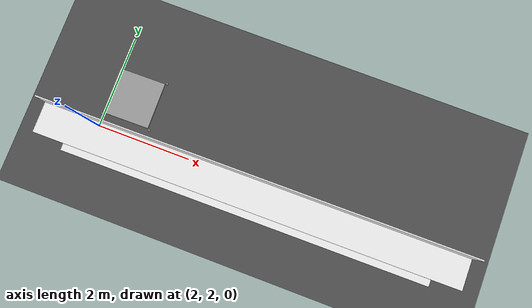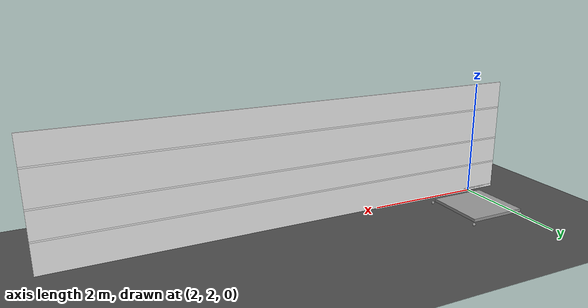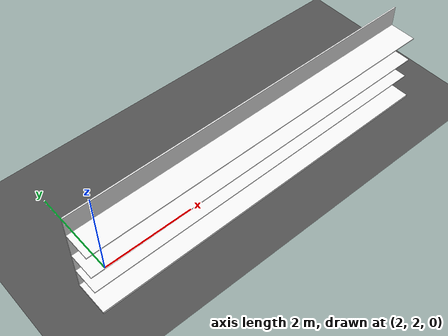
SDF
<sdf version="1.6">
 <world name="default">
  <model name="ground_plane">
   <static>1</static>
   <link name="link">
    <collision name="collision">
     <geometry><plane><normal>0 0 1</normal><size>100 100</size></plane></geometry>
     <surface>
      <contact><collide_bitmask>65535</collide_bitmask></contact>
      <friction><ode><mu>100</mu><mu2>50</mu2></ode></friction>
     </surface>
    </collision>
    <visual name="visual">
     <cast_shadows>0</cast_shadows>
     <geometry><plane><normal>0 0 1</normal><size>100 100</size></plane></geometry>
     <material>
      <script>
       <uri>model://asphalt_plane/materials/scripts</uri>
       <uri>model://asphalt_plane/materials/textures</uri>
       <name>vrc/asphalt</name>
      </script>
     </material>
    </visual>
   </link>
  </model>
  <model name="LongShelfx4_clone">
   <link name="link_0">
    <pose>-4.95428 0.681381 -0.638013 0 -0 0</pose>
    <inertial>
     <mass>5</mass>
     <inertia><ixx>1</ixx><ixy>0</ixy><ixz>0</ixz><iyy>1</iyy><iyz>0</iyz><izz>1</izz></inertia>
    </inertial>
    <visual name="visual">
     <geometry><box><size>8 0.75 0.05</size></box></geometry>
     <material>
      <lighting>1</lighting>
      <script><uri>file://media/materials/scripts/gazebo.material</uri><name>Gazebo/White</name></script>
      <shader type="vertex"><normal_map>__default__</normal_map></shader>
      <ambient>0.3 0.3 0.3 1</ambient>
      <diffuse>0.7 0.7 0.7 1</diffuse>
      <specular>0.01 0.01 0.01 1</specular>
      <emissive>0 0 0 1</emissive>
     </material>
    </visual>
    <collision name="collision">
     <geometry><box><size>8 0.75 0.05</size></box></geometry>
     <surface>
      <friction>
       <ode><mu>1</mu><mu2>1</mu2><fdir1>0 0 0</fdir1><slip1>0</slip1><slip2>0</slip2></ode>
       <torsional>
        <coefficient>1</coefficient>
        <patch_radius>0</patch_radius>
        <surface_radius>0</surface_radius>
        <use_patch_radius>1</use_patch_radius>
        <ode><slip>0</slip></ode>
       </torsional>
      </friction>
      <bounce><restitution_coefficient>0</restitution_coefficient><threshold>1e+06</threshold></bounce>
      <contact>
       <collide_without_contact>0</collide_without_contact>
       <collide_without_contact_bitmask>1</collide_without_contact_bitmask>
       <collide_bitmask>1</collide_bitmask>
       <ode>
        <soft_cfm>0</soft_cfm>
        <soft_erp>0.2</soft_erp>
        <kp>1e+13</kp>
        <kd>1</kd>
        <max_vel>0.01</max_vel>
        <min_depth>0</min_depth>
       </ode>
       <bullet>
        <split_impulse>1</split_impulse>
        <split_impulse_penetration_threshold>-0.01</split_impulse_penetration_threshold>
        <soft_cfm>0</soft_cfm>
        <soft_erp>0.2</soft_erp>
        <kp>1e+13</kp>
        <kd>1</kd>
       </bullet>
      </contact>
     </surface>
    </collision>
   </link>
   <link name="link_1">
    <pose>-4.95468 0.318881 0.335328 0 -0 0</pose>
    <inertial>
     <mass>5</mass>
     <inertia><ixx>1</ixx><ixy>0</ixy><ixz>0</ixz><iyy>1</iyy><iyz>0</iyz><izz>1</izz></inertia>
    </inertial>
    <visual name="visual">
     <geometry><box><size>8 0.025 2</size></box></geometry>
     <material>
      <lighting>1</lighting>
      <script><uri>file://media/materials/scripts/gazebo.material</uri><name>Gazebo/White</name></script>
      <shader type="vertex"><normal_map>__default__</normal_map></shader>
      <ambient>0.3 0.3 0.3 1</ambient>
      <diffuse>0.7 0.7 0.7 1</diffuse>
      <specular>0.01 0.01 0.01 1</specular>
      <emissive>0 0 0 1</emissive>
     </material>
    </visual>
    <collision name="collision">
     <geometry><box><size>8 0.025 2</size></box></geometry>
     <surface>
      <friction>
       <ode><mu>1</mu><mu2>1</mu2><fdir1>0 0 0</fdir1><slip1>0</slip1><slip2>0</slip2></ode>
       <torsional>
        <coefficient>1</coefficient>
        <patch_radius>0</patch_radius>
        <surface_radius>0</surface_radius>
        <use_patch_radius>1</use_patch_radius>
        <ode><slip>0</slip></ode>
       </torsional>
      </friction>
      <bounce><restitution_coefficient>0</restitution_coefficient><threshold>1e+06</threshold></bounce>
      <contact>
       <collide_without_contact>0</collide_without_contact>
       <collide_without_contact_bitmask>1</collide_without_contact_bitmask>
       <collide_bitmask>1</collide_bitmask>
       <ode>
        <soft_cfm>0</soft_cfm>
        <soft_erp>0.2</soft_erp>
        <kp>1e+13</kp>
        <kd>1</kd>
        <max_vel>0.01</max_vel>
        <min_depth>0</min_depth>
       </ode>
       <bullet>
        <split_impulse>1</split_impulse>
        <split_impulse_penetration_threshold>-0.01</split_impulse_penetration_threshold>
        <soft_cfm>0</soft_cfm>
        <soft_erp>0.2</soft_erp>
        <kp>1e+13</kp>
        <kd>1</kd>
       </bullet>
      </contact>
     </surface>
    </collision>
   </link>
   <link name="link_2">
    <pose>-4.95438 0.606368 0.295639 0 -0 0</pose>
    <inertial>
     <mass>5</mass>
     <inertia><ixx>1</ixx><ixy>0</ixy><ixz>0</ixz><iyy>1</iyy><iyz>0</iyz><izz>1</izz></inertia>
    </inertial>
    <visual name="visual">
     <geometry><box><size>8 0.6 0.025</size></box></geometry>
     <material>
      <lighting>1</lighting>
      <script><uri>file://media/materials/scripts/gazebo.material</uri><name>Gazebo/White</name></script>
      <shader type="vertex"><normal_map>__default__</normal_map></shader>
      <ambient>0.3 0.3 0.3 1</ambient>
      <diffuse>0.7 0.7 0.7 1</diffuse>
      <specular>0.01 0.01 0.01 1</specular>
      <emissive>0 0 0 1</emissive>
     </material>
    </visual>
    <collision name="collision">
     <geometry><box><size>8 0.600001 0.025</size></box></geometry>
     <surface>
      <friction>
       <ode><mu>1</mu><mu2>1</mu2><fdir1>0 0 0</fdir1><slip1>0</slip1><slip2>0</slip2></ode>
       <torsional>
        <coefficient>1</coefficient>
        <patch_radius>0</patch_radius>
        <surface_radius>0</surface_radius>
        <use_patch_radius>1</use_patch_radius>
        <ode><slip>0</slip></ode>
       </torsional>
      </friction>
      <bounce><restitution_coefficient>0</restitution_coefficient><threshold>1e+06</threshold></bounce>
      <contact>
       <collide_without_contact>0</collide_without_contact>
       <collide_without_contact_bitmask>1</collide_without_contact_bitmask>
       <collide_bitmask>1</collide_bitmask>
       <ode>
        <soft_cfm>0</soft_cfm>
        <soft_erp>0.2</soft_erp>
        <kp>1e+13</kp>
        <kd>1</kd>
        <max_vel>0.01</max_vel>
        <min_depth>0</min_depth>
       </ode>
       <bullet>
        <split_impulse>1</split_impulse>
        <split_impulse_penetration_threshold>-0.01</split_impulse_penetration_threshold>
        <soft_cfm>0</soft_cfm>
        <soft_erp>0.2</soft_erp>
        <kp>1e+13</kp>
        <kd>1</kd>
       </bullet>
      </contact>
     </surface>
    </collision>
   </link>
   <link name="link_2_clone">
    <pose>-4.95438 0.606361 0.871858 0 -0 0</pose>
    <inertial>
     <mass>5</mass>
     <inertia><ixx>1</ixx><ixy>0</ixy><ixz>0</ixz><iyy>1</iyy><iyz>0</iyz><izz>1</izz></inertia>
    </inertial>
    <visual name="visual">
     <geometry><box><size>8 0.6 0.025</size></box></geometry>
     <material>
      <lighting>1</lighting>
      <script><uri>file://media/materials/scripts/gazebo.material</uri><name>Gazebo/White</name></script>
      <shader type="vertex"><normal_map>__default__</normal_map></shader>
      <ambient>0.3 0.3 0.3 1</ambient>
      <diffuse>0.7 0.7 0.7 1</diffuse>
      <specular>0.01 0.01 0.01 1</specular>
      <emissive>0 0 0 1</emissive>
     </material>
    </visual>
    <collision name="collision">
     <geometry><box><size>8 0.600001 0.025</size></box></geometry>
     <surface>
      <friction>
       <ode><mu>1</mu><mu2>1</mu2><fdir1>0 0 0</fdir1><slip1>0</slip1><slip2>0</slip2></ode>
       <torsional>
        <coefficient>1</coefficient>
        <patch_radius>0</patch_radius>
        <surface_radius>0</surface_radius>
        <use_patch_radius>1</use_patch_radius>
        <ode><slip>0</slip></ode>
       </torsional>
      </friction>
      <bounce><restitution_coefficient>0</restitution_coefficient><threshold>1e+06</threshold></bounce>
      <contact>
       <collide_without_contact>0</collide_without_contact>
       <collide_without_contact_bitmask>1</collide_without_contact_bitmask>
       <collide_bitmask>1</collide_bitmask>
       <ode>
        <soft_cfm>0</soft_cfm>
        <soft_erp>0.2</soft_erp>
        <kp>1e+13</kp>
        <kd>1</kd>
        <max_vel>0.01</max_vel>
        <min_depth>0</min_depth>
       </ode>
       <bullet>
        <split_impulse>1</split_impulse>
        <split_impulse_penetration_threshold>-0.01</split_impulse_penetration_threshold>
        <soft_cfm>0</soft_cfm>
        <soft_erp>0.2</soft_erp>
        <kp>1e+13</kp>
        <kd>1</kd>
       </bullet>
      </contact>
     </surface>
    </collision>
   </link>
   <link name="link_2_clone_0">
    <pose>-4.95438 0.606375 -0.163574 0 -0 0</pose>
    <inertial>
     <mass>5</mass>
     <inertia><ixx>1</ixx><ixy>0</ixy><ixz>0</ixz><iyy>1</iyy><iyz>0</iyz><izz>1</izz></inertia>
    </inertial>
    <visual name="visual">
     <geometry><box><size>8 0.6 0.025</size></box></geometry>
     <material>
      <lighting>1</lighting>
      <script><uri>file://media/materials/scripts/gazebo.material</uri><name>Gazebo/White</name></script>
      <shader type="vertex"><normal_map>__default__</normal_map></shader>
      <ambient>0.3 0.3 0.3 1</ambient>
      <diffuse>0.7 0.7 0.7 1</diffuse>
      <specular>0.01 0.01 0.01 1</specular>
      <emissive>0 0 0 1</emissive>
     </material>
    </visual>
    <collision name="collision">
     <geometry><box><size>8 0.600001 0.025</size></box></geometry>
     <surface>
      <friction>
       <ode><mu>1</mu><mu2>1</mu2><fdir1>0 0 0</fdir1><slip1>0</slip1><slip2>0</slip2></ode>
       <torsional>
        <coefficient>1</coefficient>
        <patch_radius>0</patch_radius>
        <surface_radius>0</surface_radius>
        <use_patch_radius>1</use_patch_radius>
        <ode><slip>0</slip></ode>
       </torsional>
      </friction>
      <bounce><restitution_coefficient>0</restitution_coefficient><threshold>1e+06</threshold></bounce>
      <contact>
       <collide_without_contact>0</collide_without_contact>
       <collide_without_contact_bitmask>1</collide_without_contact_bitmask>
       <collide_bitmask>1</collide_bitmask>
       <ode>
        <soft_cfm>0</soft_cfm>
        <soft_erp>0.2</soft_erp>
        <kp>1e+13</kp>
        <kd>1</kd>
        <max_vel>0.01</max_vel>
        <min_depth>0</min_depth>
       </ode>
       <bullet>
        <split_impulse>1</split_impulse>
        <split_impulse_penetration_threshold>-0.01</split_impulse_penetration_threshold>
        <soft_cfm>0</soft_cfm>
        <soft_erp>0.2</soft_erp>
        <kp>1e+13</kp>
        <kd>1</kd>
       </bullet>
      </contact>
     </surface>
    </collision>
   </link>
   <joint name="link_1_JOINT_4" type="fixed">
    <parent>link_1</parent>
    <child>link_0</child>
    <physics>
     <ode><limit><cfm>0</cfm><erp>0.2</erp></limit><suspension><cfm>0</cfm><erp>0.2</erp></suspension></ode>
    </physics>
   </joint>
   <joint name="link_1_JOINT_5" type="fixed">
    <parent>link_1</parent>
    <child>link_2_clone_0</child>
    <physics>
     <ode><limit><cfm>0</cfm><erp>0.2</erp></limit><suspension><cfm>0</cfm><erp>0.2</erp></suspension></ode>
    </physics>
   </joint>
   <joint name="link_1_JOINT_6" type="fixed">
    <parent>link_1</parent>
    <child>link_2</child>
    <physics>
     <ode><limit><cfm>0</cfm><erp>0.2</erp></limit><suspension><cfm>0</cfm><erp>0.2</erp></suspension></ode>
    </physics>
   </joint>
   <joint name="link_1_JOINT_7" type="fixed">
    <parent>link_1</parent>
    <child>link_2_clone</child>
    <physics>
     <ode><limit><cfm>0</cfm><erp>0.2</erp></limit><suspension><cfm>0</cfm><erp>0.2</erp></suspension></ode>
    </physics>
   </joint>
   <static>0</static>
   <pose>0.496556 2.29879 0.665378 -0.002295 6e-06 -3.13592</pose>
  </model>
  <model name="dolly">
   <link name="link_0">
    <pose>0 0 0.05 0 -0 0</pose>
    <inertial>
     <mass>5</mass>
     <inertia><ixx>0</ixx><ixy>0</ixy><ixz>0</ixz><iyy>0</iyy><iyz>0</iyz><izz>0</izz></inertia>
    </inertial>
    <visual name="visual">
     <geometry><box><size>1 1 0.05</size></box></geometry>
     <material>
      <lighting>1</lighting>
      <script><uri>file://media/materials/scripts/gazebo.material</uri><name>Gazebo/Grey</name></script>
      <shader type="vertex"><normal_map>__default__</normal_map></shader>
      <ambient>0.3 0.3 0.3 1</ambient>
      <diffuse>0.9 0.9 0.9 1</diffuse>
      <specular>0.08 0.08 0.08 1</specular>
      <emissive>0 0 0 1</emissive>
     </material>
    </visual>
    <collision name="collision">
     <geometry><box><size>1 1 0.05</size></box></geometry>
     <surface>
      <friction>
       <ode><mu>1</mu><mu2>1</mu2><fdir1>0 0 0</fdir1><slip1>0</slip1><slip2>0</slip2></ode>
       <torsional>
        <coefficient>1</coefficient>
        <patch_radius>0</patch_radius>
        <surface_radius>0</surface_radius>
        <use_patch_radius>1</use_patch_radius>
        <ode><slip>0</slip></ode>
       </torsional>
      </friction>
      <bounce><restitution_coefficient>0</restitution_coefficient><threshold>1e+06</threshold></bounce>
      <contact>
       <collide_without_contact>0</collide_without_contact>
       <collide_without_contact_bitmask>1</collide_without_contact_bitmask>
       <collide_bitmask>1</collide_bitmask>
       <ode>
        <soft_cfm>0</soft_cfm>
        <soft_erp>0.2</soft_erp>
        <kp>1e+13</kp>
        <kd>1</kd>
        <max_vel>0.01</max_vel>
        <min_depth>0</min_depth>
       </ode>
       <bullet>
        <split_impulse>1</split_impulse>
        <split_impulse_penetration_threshold>-0.01</split_impulse_penetration_threshold>
        <soft_cfm>0</soft_cfm>
        <soft_erp>0.2</soft_erp>
        <kp>1e+13</kp>
        <kd>1</kd>
       </bullet>
      </contact>
     </surface>
    </collision>
   </link>
   <link name="link_0_0">
    <pose>-0.475902 0.525156 0 0 -0 0</pose>
    <inertial>
     <mass>0.1</mass>
     <inertia><ixx>0</ixx><ixy>0</ixy><ixz>0</ixz><iyy>0</iyy><iyz>0</iyz><izz>0</izz></inertia>
    </inertial>
    <visual name="visual">
     <geometry><sphere><radius>0.025</radius></sphere></geometry>
     <material>
      <lighting>1</lighting>
      <script><uri>file://media/materials/scripts/gazebo.material</uri><name>Gazebo/Grey</name></script>
      <shader type="vertex"><normal_map>__default__</normal_map></shader>
      <ambient>0.3 0.3 0.3 1</ambient>
      <diffuse>0.7 0.7 0.7 1</diffuse>
      <specular>0.01 0.01 0.01 1</specular>
      <emissive>0 0 0 1</emissive>
     </material>
    </visual>
    <collision name="collision">
     <geometry><sphere><radius>0.025</radius></sphere></geometry>
     <surface>
      <friction>
       <ode><mu>1</mu><mu2>1</mu2><fdir1>0 0 0</fdir1><slip1>0</slip1><slip2>0</slip2></ode>
       <torsional>
        <coefficient>1</coefficient>
        <patch_radius>0</patch_radius>
        <surface_radius>0</surface_radius>
        <use_patch_radius>1</use_patch_radius>
        <ode><slip>0</slip></ode>
       </torsional>
      </friction>
      <bounce><restitution_coefficient>0</restitution_coefficient><threshold>1e+06</threshold></bounce>
      <contact>
       <collide_without_contact>0</collide_without_contact>
       <collide_without_contact_bitmask>1</collide_without_contact_bitmask>
       <collide_bitmask>1</collide_bitmask>
       <ode>
        <soft_cfm>0</soft_cfm>
        <soft_erp>0.2</soft_erp>
        <kp>1e+13</kp>
        <kd>1</kd>
        <max_vel>0.01</max_vel>
        <min_depth>0</min_depth>
       </ode>
       <bullet>
        <split_impulse>1</split_impulse>
        <split_impulse_penetration_threshold>-0.01</split_impulse_penetration_threshold>
        <soft_cfm>0</soft_cfm>
        <soft_erp>0.2</soft_erp>
        <kp>1e+13</kp>
        <kd>1</kd>
       </bullet>
      </contact>
     </surface>
    </collision>
   </link>
   <link name="link_0_0_clone">
    <pose>0.524976 0.525931 -1.1e-05 3.7e-05 1.2e-05 0.000901</pose>
    <inertial>
     <mass>0.1</mass>
     <inertia><ixx>0</ixx><ixy>0</ixy><ixz>0</ixz><iyy>0</iyy><iyz>0</iyz><izz>0</izz></inertia>
    </inertial>
    <visual name="visual_0">
     <geometry><sphere><radius>0.025</radius></sphere></geometry>
     <material>
      <lighting>1</lighting>
      <script><uri>file://media/materials/scripts/gazebo.material</uri><name>Gazebo/Grey</name></script>
      <shader type="vertex"><normal_map>__default__</normal_map></shader>
      <ambient>0.3 0.3 0.3 1</ambient>
      <diffuse>0.7 0.7 0.7 1</diffuse>
      <specular>0.01 0.01 0.01 1</specular>
      <emissive>0 0 0 1</emissive>
     </material>
    </visual>
    <collision name="collision">
     <geometry><sphere><radius>0.025</radius></sphere></geometry>
     <surface>
      <friction>
       <ode><mu>1</mu><mu2>1</mu2><fdir1>0 0 0</fdir1><slip1>0</slip1><slip2>0</slip2></ode>
       <torsional>
        <coefficient>1</coefficient>
        <patch_radius>0</patch_radius>
        <surface_radius>0</surface_radius>
        <use_patch_radius>1</use_patch_radius>
        <ode><slip>0</slip></ode>
       </torsional>
      </friction>
      <bounce><restitution_coefficient>0</restitution_coefficient><threshold>1e+06</threshold></bounce>
      <contact>
       <collide_without_contact>0</collide_without_contact>
       <collide_without_contact_bitmask>1</collide_without_contact_bitmask>
       <collide_bitmask>1</collide_bitmask>
       <ode>
        <soft_cfm>0</soft_cfm>
        <soft_erp>0.2</soft_erp>
        <kp>1e+13</kp>
        <kd>1</kd>
        <max_vel>0.01</max_vel>
        <min_depth>0</min_depth>
       </ode>
       <bullet>
        <split_impulse>1</split_impulse>
        <split_impulse_penetration_threshold>-0.01</split_impulse_penetration_threshold>
        <soft_cfm>0</soft_cfm>
        <soft_erp>0.2</soft_erp>
        <kp>1e+13</kp>
        <kd>1</kd>
       </bullet>
      </contact>
     </surface>
    </collision>
   </link>
   <link name="link_0_0_clone_clone">
    <pose>0.525946 -0.524999 -5.1e-05 7.4e-05 2.4e-05 0.001802</pose>
    <inertial>
     <mass>0.1</mass>
     <inertia><ixx>0</ixx><ixy>0</ixy><ixz>0</ixz><iyy>0</iyy><iyz>0</iyz><izz>0</izz></inertia>
    </inertial>
    <visual name="visual_0">
     <geometry><sphere><radius>0.025</radius></sphere></geometry>
     <material>
      <lighting>1</lighting>
      <script><uri>file://media/materials/scripts/gazebo.material</uri><name>Gazebo/Grey</name></script>
      <shader type="vertex"><normal_map>__default__</normal_map></shader>
      <ambient>0.3 0.3 0.3 1</ambient>
      <diffuse>0.7 0.7 0.7 1</diffuse>
      <specular>0.01 0.01 0.01 1</specular>
      <emissive>0 0 0 1</emissive>
     </material>
    </visual>
    <collision name="collision">
     <geometry><sphere><radius>0.025</radius></sphere></geometry>
     <surface>
      <friction>
       <ode><mu>1</mu><mu2>1</mu2><fdir1>0 0 0</fdir1><slip1>0</slip1><slip2>0</slip2></ode>
       <torsional>
        <coefficient>1</coefficient>
        <patch_radius>0</patch_radius>
        <surface_radius>0</surface_radius>
        <use_patch_radius>1</use_patch_radius>
        <ode><slip>0</slip></ode>
       </torsional>
      </friction>
      <bounce><restitution_coefficient>0</restitution_coefficient><threshold>1e+06</threshold></bounce>
      <contact>
       <collide_without_contact>0</collide_without_contact>
       <collide_without_contact_bitmask>1</collide_without_contact_bitmask>
       <collide_bitmask>1</collide_bitmask>
       <ode>
        <soft_cfm>0</soft_cfm>
        <soft_erp>0.2</soft_erp>
        <kp>1e+13</kp>
        <kd>1</kd>
        <max_vel>0.01</max_vel>
        <min_depth>0</min_depth>
       </ode>
       <bullet>
        <split_impulse>1</split_impulse>
        <split_impulse_penetration_threshold>-0.01</split_impulse_penetration_threshold>
        <soft_cfm>0</soft_cfm>
        <soft_erp>0.2</soft_erp>
        <kp>1e+13</kp>
        <kd>1</kd>
       </bullet>
      </contact>
     </surface>
    </collision>
   </link>
   <link name="link_0_0_clone_clone_clone">
    <pose>-0.525024 -0.52597 -4e-05 0.000111 3.5e-05 0.002703</pose>
    <inertial>
     <mass>0.1</mass>
     <inertia><ixx>0</ixx><ixy>0</ixy><ixz>0</ixz><iyy>0</iyy><iyz>0</iyz><izz>0</izz></inertia>
    </inertial>
    <visual name="visual_0">
     <geometry><sphere><radius>0.025</radius></sphere></geometry>
     <material>
      <lighting>1</lighting>
      <script><uri>file://media/materials/scripts/gazebo.material</uri><name>Gazebo/Grey</name></script>
      <shader type="vertex"><normal_map>__default__</normal_map></shader>
      <ambient>0.3 0.3 0.3 1</ambient>
      <diffuse>0.7 0.7 0.7 1</diffuse>
      <specular>0.01 0.01 0.01 1</specular>
      <emissive>0 0 0 1</emissive>
     </material>
    </visual>
    <collision name="collision">
     <geometry><sphere><radius>0.025</radius></sphere></geometry>
     <surface>
      <friction>
       <ode><mu>1</mu><mu2>1</mu2><fdir1>0 0 0</fdir1><slip1>0</slip1><slip2>0</slip2></ode>
       <torsional>
        <coefficient>1</coefficient>
        <patch_radius>0</patch_radius>
        <surface_radius>0</surface_radius>
        <use_patch_radius>1</use_patch_radius>
        <ode><slip>0</slip></ode>
       </torsional>
      </friction>
      <bounce><restitution_coefficient>0</restitution_coefficient><threshold>1e+06</threshold></bounce>
      <contact>
       <collide_without_contact>0</collide_without_contact>
       <collide_without_contact_bitmask>1</collide_without_contact_bitmask>
       <collide_bitmask>1</collide_bitmask>
       <ode>
        <soft_cfm>0</soft_cfm>
        <soft_erp>0.2</soft_erp>
        <kp>1e+13</kp>
        <kd>1</kd>
        <max_vel>0.01</max_vel>
        <min_depth>0</min_depth>
       </ode>
       <bullet>
        <split_impulse>1</split_impulse>
        <split_impulse_penetration_threshold>-0.01</split_impulse_penetration_threshold>
        <soft_cfm>0</soft_cfm>
        <soft_erp>0.2</soft_erp>
        <kp>1e+13</kp>
        <kd>1</kd>
       </bullet>
      </contact>
     </surface>
    </collision>
   </link>
   <joint name="link_0_JOINT_1" type="ball">
    <parent>link_0</parent>
    <child>link_0_0</child>
    <physics>
     <ode><limit><cfm>0</cfm><erp>0.2</erp></limit><suspension><cfm>0</cfm><erp>0.2</erp></suspension></ode>
    </physics>
   </joint>
   <joint name="link_0_JOINT_2" type="revolute">
    <parent>link_0</parent>
    <child>link_0_0_clone</child>
    <axis>
     <xyz>1 0 0</xyz>
     <use_parent_model_frame>0</use_parent_model_frame>
     <limit>
      <lower>-1.79769e+308</lower>
      <upper>1.79769e+308</upper>
      <effort>-1</effort>
      <velocity>-1</velocity>
     </limit>
     <dynamics>
      <spring_reference>0</spring_reference>
      <spring_stiffness>0</spring_stiffness>
      <damping>0</damping>
      <friction>0</friction>
     </dynamics>
    </axis>
    <physics>
     <ode><limit><cfm>0</cfm><erp>0.2</erp></limit><suspension><cfm>0</cfm><erp>0.2</erp></suspension></ode>
    </physics>
   </joint>
   <joint name="link_0_JOINT_3" type="revolute">
    <parent>link_0</parent>
    <child>link_0_0_clone_clone</child>
    <axis>
     <xyz>1 0 0</xyz>
     <use_parent_model_frame>0</use_parent_model_frame>
     <limit>
      <lower>-1.79769e+308</lower>
      <upper>1.79769e+308</upper>
      <effort>-1</effort>
      <velocity>-1</velocity>
     </limit>
     <dynamics>
      <spring_reference>0</spring_reference>
      <spring_stiffness>0</spring_stiffness>
      <damping>0</damping>
      <friction>0</friction>
     </dynamics>
    </axis>
    <physics>
     <ode><limit><cfm>0</cfm><erp>0.2</erp></limit><suspension><cfm>0</cfm><erp>0.2</erp></suspension></ode>
    </physics>
   </joint>
   <joint name="link_0_JOINT_4" type="revolute">
    <parent>link_0</parent>
    <child>link_0_0_clone_clone_clone</child>
    <axis>
     <xyz>1 0 0</xyz>
     <use_parent_model_frame>0</use_parent_model_frame>
     <limit>
      <lower>-1.79769e+308</lower>
      <upper>1.79769e+308</upper>
      <effort>-1</effort>
      <velocity>-1</velocity>
     </limit>
     <dynamics>
      <spring_reference>0</spring_reference>
      <spring_stiffness>0</spring_stiffness>
      <damping>0</damping>
      <friction>0</friction>
     </dynamics>
    </axis>
    <physics>
     <ode><limit><cfm>0</cfm><erp>0.2</erp></limit><suspension><cfm>0</cfm><erp>0.2</erp></suspension></ode>
    </physics>
   </joint>
   <static>0</static>
   <pose>2.48912 2.79718 0.025025 -3.8e-05 -1.1e-05 0.011466</pose>
  </model>
 </world>
</sdf>
